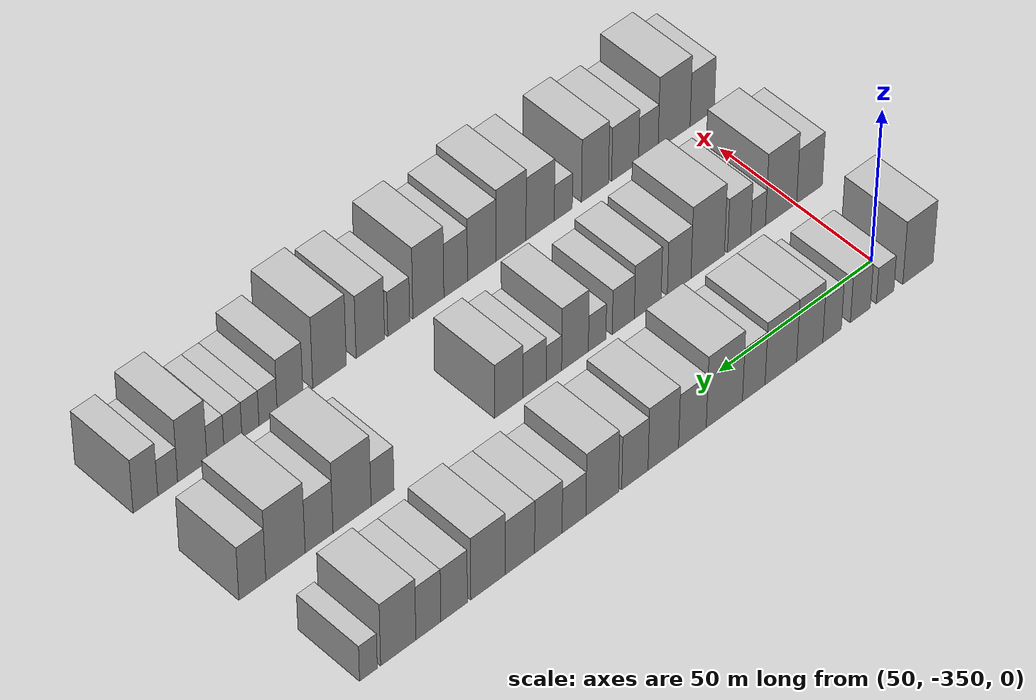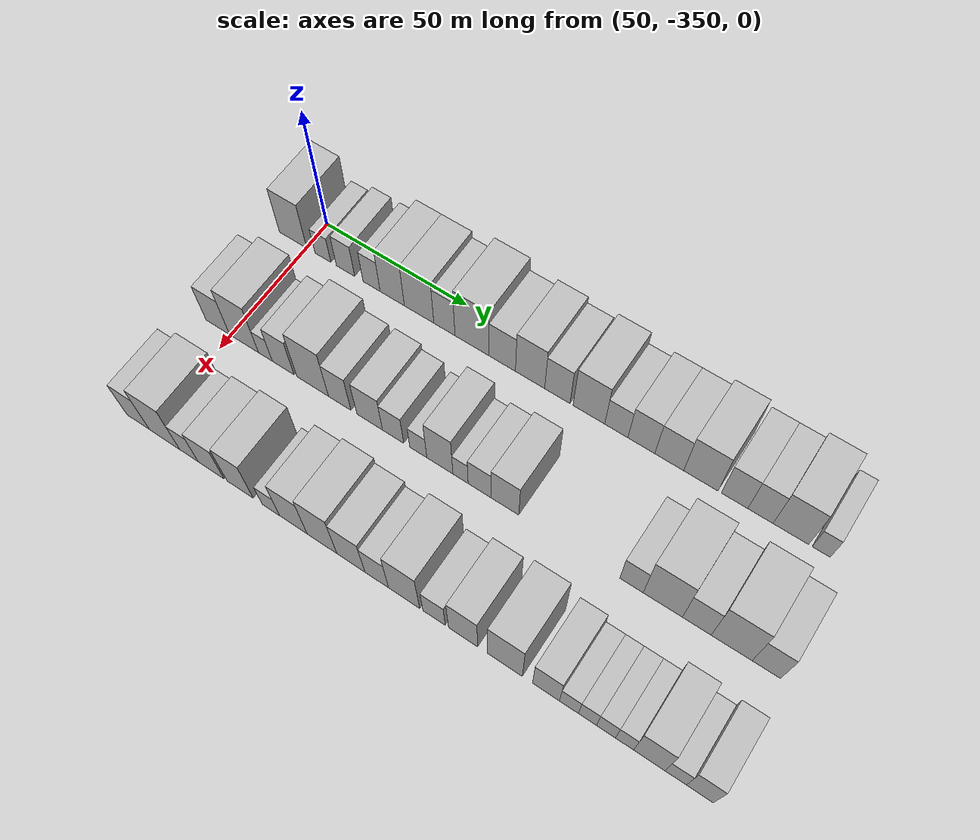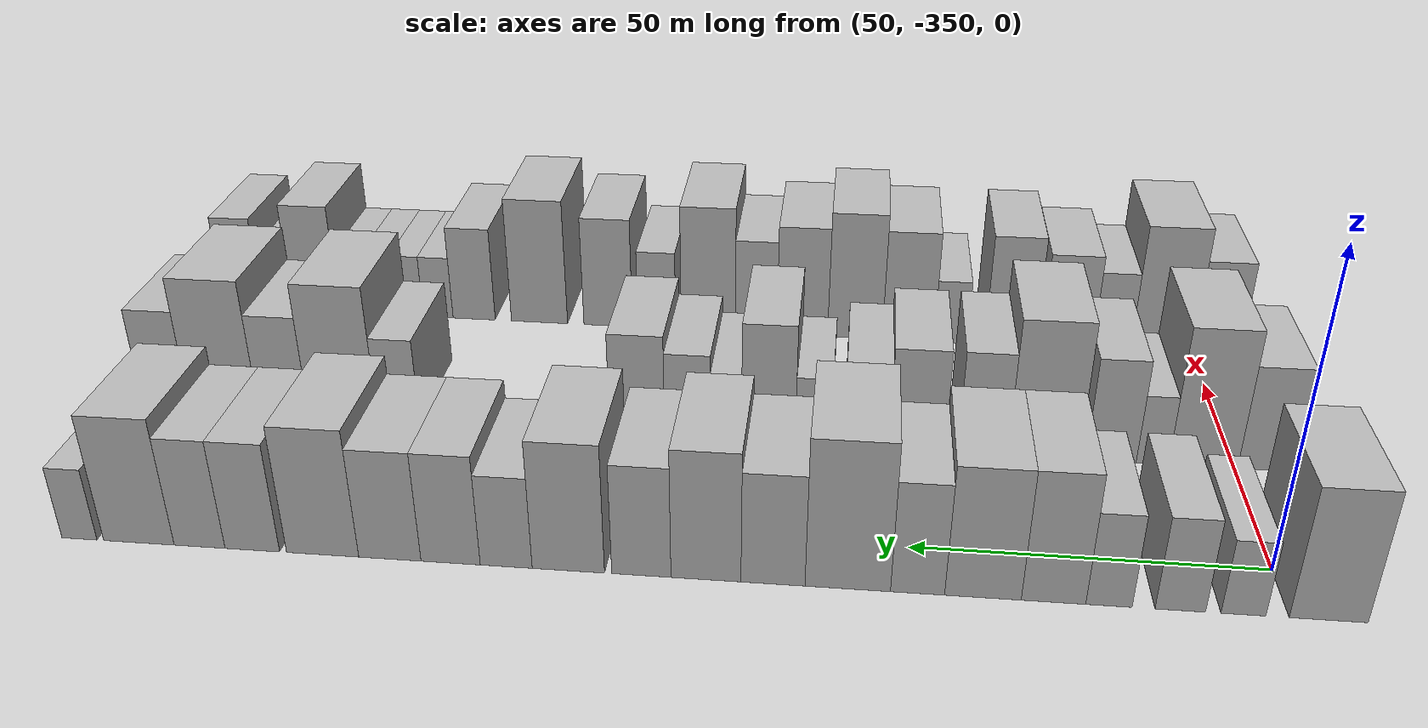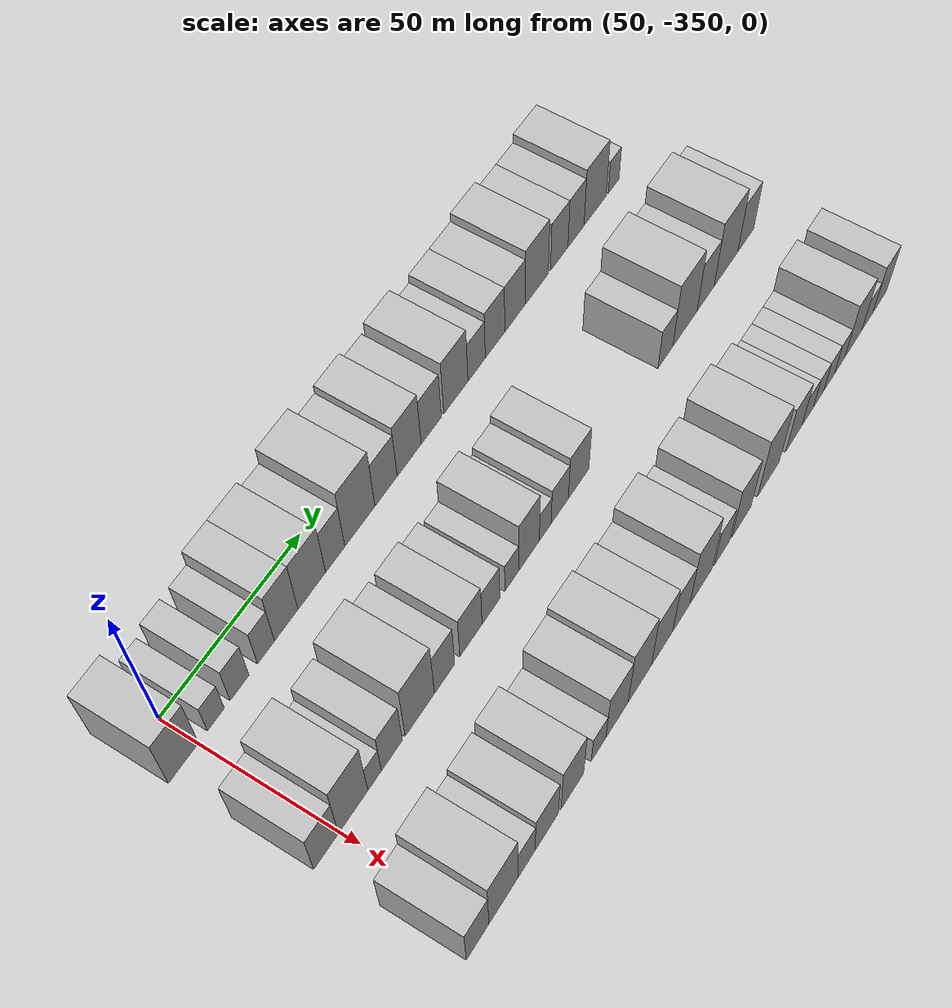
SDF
<sdf version="1.6">
 <world name="default">
  <model name="building_1">
   <static>1</static>
   <pose>50.0000 -354.9391 0 0.000000 0.000000 0.000000</pose>
   <link name="link">
    <pose>0 0 10.50 0 0 0</pose>
    <collision name="collision"><geometry><box><size>20.0000 10.1219 21.0000</size></box></geometry></collision>
    <visual name="visual">
     <cast_shadows>0</cast_shadows>
     <geometry><box><size>20.0000 10.1219 21.0000</size></box></geometry>
     <material>
      <script>
       <uri>model://HANNAS_wall/materials/scripts</uri>
       <uri>model://HANNAS_wall/materials/textures</uri>
       <name>vrc/HANNAS_wall</name>
      </script>
     </material>
    </visual>
   </link>
  </model>
  <model name="building_2">
   <static>1</static>
   <pose>50.0000 -343.9775 0 0.000000 0.000000 0.000000</pose>
   <link name="link">
    <pose>0 0 6.00 0 0 0</pose>
    <collision name="collision"><geometry><box><size>20.0000 5.8013 12.0000</size></box></geometry></collision>
    <visual name="visual">
     <cast_shadows>0</cast_shadows>
     <geometry><box><size>20.0000 5.8013 12.0000</size></box></geometry>
     <material>
      <script>
       <uri>model://HANNAS_wall/materials/scripts</uri>
       <uri>model://HANNAS_wall/materials/textures</uri>
       <name>vrc/HANNAS_wall</name>
      </script>
     </material>
    </visual>
   </link>
  </model>
  <model name="building_3">
   <static>1</static>
   <pose>50.0000 -335.7818 0 0.000000 0.000000 0.000000</pose>
   <link name="link">
    <pose>0 0 7.50 0 0 0</pose>
    <collision name="collision"><geometry><box><size>20.0000 6.5900 15.0000</size></box></geometry></collision>
    <visual name="visual">
     <cast_shadows>0</cast_shadows>
     <geometry><box><size>20.0000 6.5900 15.0000</size></box></geometry>
     <material>
      <script>
       <uri>model://HANNAS_wall/materials/scripts</uri>
       <uri>model://HANNAS_wall/materials/textures</uri>
       <name>vrc/HANNAS_wall</name>
      </script>
     </material>
    </visual>
   </link>
  </model>
  <model name="building_4">
   <static>1</static>
   <pose>50.0000 -326.4443 0 0.000000 0.000000 0.000000</pose>
   <link name="link">
    <pose>0 0 7.50 0 0 0</pose>
    <collision name="collision"><geometry><box><size>20.0000 6.0850 15.0000</size></box></geometry></collision>
    <visual name="visual">
     <cast_shadows>0</cast_shadows>
     <geometry><box><size>20.0000 6.0850 15.0000</size></box></geometry>
     <material>
      <script>
       <uri>model://HANNAS_wall/materials/scripts</uri>
       <uri>model://HANNAS_wall/materials/textures</uri>
       <name>vrc/HANNAS_wall</name>
      </script>
     </material>
    </visual>
   </link>
  </model>
  <model name="building_5">
   <static>1</static>
   <pose>50.0000 -319.1303 0 0.000000 0.000000 0.000000</pose>
   <link name="link">
    <pose>0 0 10.50 0 0 0</pose>
    <collision name="collision"><geometry><box><size>20.0000 8.5431 21.0000</size></box></geometry></collision>
    <visual name="visual">
     <cast_shadows>0</cast_shadows>
     <geometry><box><size>20.0000 8.5431 21.0000</size></box></geometry>
     <material>
      <script>
       <uri>model://HANNAS_wall/materials/scripts</uri>
       <uri>model://HANNAS_wall/materials/textures</uri>
       <name>vrc/HANNAS_wall</name>
      </script>
     </material>
    </visual>
   </link>
  </model>
  <model name="building_6">
   <static>1</static>
   <pose>50.0000 -309.7479 0 0.000000 0.000000 0.000000</pose>
   <link name="link">
    <pose>0 0 10.50 0 0 0</pose>
    <collision name="collision"><geometry><box><size>20.0000 10.2218 21.0000</size></box></geometry></collision>
    <visual name="visual">
     <cast_shadows>0</cast_shadows>
     <geometry><box><size>20.0000 10.2218 21.0000</size></box></geometry>
     <material>
      <script>
       <uri>model://HANNAS_wall/materials/scripts</uri>
       <uri>model://HANNAS_wall/materials/textures</uri>
       <name>vrc/HANNAS_wall</name>
      </script>
     </material>
    </visual>
   </link>
  </model>
  <model name="building_7">
   <static>1</static>
   <pose>50.0000 -301.0002 0 0.000000 0.000000 0.000000</pose>
   <link name="link">
    <pose>0 0 9.00 0 0 0</pose>
    <collision name="collision"><geometry><box><size>20.0000 7.2737 18.0000</size></box></geometry></collision>
    <visual name="visual">
     <cast_shadows>0</cast_shadows>
     <geometry><box><size>20.0000 7.2737 18.0000</size></box></geometry>
     <material>
      <script>
       <uri>model://HANNAS_wall/materials/scripts</uri>
       <uri>model://HANNAS_wall/materials/textures</uri>
       <name>vrc/HANNAS_wall</name>
      </script>
     </material>
    </visual>
   </link>
  </model>
  <model name="building_8">
   <static>1</static>
   <pose>50.0000 -291.5645 0 0.000000 0.000000 0.000000</pose>
   <link name="link">
    <pose>0 0 12.00 0 0 0</pose>
    <collision name="collision"><geometry><box><size>20.0000 11.5976 24.0000</size></box></geometry></collision>
    <visual name="visual">
     <cast_shadows>0</cast_shadows>
     <geometry><box><size>20.0000 11.5976 24.0000</size></box></geometry>
     <material>
      <script>
       <uri>model://HANNAS_wall/materials/scripts</uri>
       <uri>model://HANNAS_wall/materials/textures</uri>
       <name>vrc/HANNAS_wall</name>
      </script>
     </material>
    </visual>
   </link>
  </model>
  <model name="building_9">
   <static>1</static>
   <pose>50.0000 -281.3838 0 0.000000 0.000000 0.000000</pose>
   <link name="link">
    <pose>0 0 9.00 0 0 0</pose>
    <collision name="collision"><geometry><box><size>20.0000 8.7638 18.0000</size></box></geometry></collision>
    <visual name="visual">
     <cast_shadows>0</cast_shadows>
     <geometry><box><size>20.0000 8.7638 18.0000</size></box></geometry>
     <material>
      <script>
       <uri>model://HANNAS_wall/materials/scripts</uri>
       <uri>model://HANNAS_wall/materials/textures</uri>
       <name>vrc/HANNAS_wall</name>
      </script>
     </material>
    </visual>
   </link>
  </model>
  <model name="building_10">
   <static>1</static>
   <pose>50.0000 -272.1794 0 0.000000 0.000000 0.000000</pose>
   <link name="link">
    <pose>0 0 10.50 0 0 0</pose>
    <collision name="collision"><geometry><box><size>20.0000 9.6451 21.0000</size></box></geometry></collision>
    <visual name="visual">
     <cast_shadows>0</cast_shadows>
     <geometry><box><size>20.0000 9.6451 21.0000</size></box></geometry>
     <material>
      <script>
       <uri>model://HANNAS_wall/materials/scripts</uri>
       <uri>model://HANNAS_wall/materials/textures</uri>
       <name>vrc/HANNAS_wall</name>
      </script>
     </material>
    </visual>
   </link>
  </model>
  <model name="building_11">
   <static>1</static>
   <pose>50.0000 -263.2379 0 0.000000 0.000000 0.000000</pose>
   <link name="link">
    <pose>0 0 9.00 0 0 0</pose>
    <collision name="collision"><geometry><box><size>20.0000 8.2379 18.0000</size></box></geometry></collision>
    <visual name="visual">
     <cast_shadows>0</cast_shadows>
     <geometry><box><size>20.0000 8.2379 18.0000</size></box></geometry>
     <material>
      <script>
       <uri>model://HANNAS_wall/materials/scripts</uri>
       <uri>model://HANNAS_wall/materials/textures</uri>
       <name>vrc/HANNAS_wall</name>
      </script>
     </material>
    </visual>
   </link>
  </model>
  <model name="building_12">
   <static>1</static>
   <pose>50.0000 -253.0416 0 0.000000 0.000000 0.000000</pose>
   <link name="link">
    <pose>0 0 10.50 0 0 0</pose>
    <collision name="collision"><geometry><box><size>20.0000 10.1548 21.0000</size></box></geometry></collision>
    <visual name="visual">
     <cast_shadows>0</cast_shadows>
     <geometry><box><size>20.0000 10.1548 21.0000</size></box></geometry>
     <material>
      <script>
       <uri>model://HANNAS_wall/materials/scripts</uri>
       <uri>model://HANNAS_wall/materials/textures</uri>
       <name>vrc/HANNAS_wall</name>
      </script>
     </material>
    </visual>
   </link>
  </model>
  <model name="building_13">
   <static>1</static>
   <pose>50.0000 -244.2923 0 0.000000 0.000000 0.000000</pose>
   <link name="link">
    <pose>0 0 7.50 0 0 0</pose>
    <collision name="collision"><geometry><box><size>20.0000 7.3437 15.0000</size></box></geometry></collision>
    <visual name="visual">
     <cast_shadows>0</cast_shadows>
     <geometry><box><size>20.0000 7.3437 15.0000</size></box></geometry>
     <material>
      <script>
       <uri>model://HANNAS_wall/materials/scripts</uri>
       <uri>model://HANNAS_wall/materials/textures</uri>
       <name>vrc/HANNAS_wall</name>
      </script>
     </material>
    </visual>
   </link>
  </model>
  <model name="building_14">
   <static>1</static>
   <pose>50.0000 -236.4029 0 0.000000 0.000000 0.000000</pose>
   <link name="link">
    <pose>0 0 9.00 0 0 0</pose>
    <collision name="collision"><geometry><box><size>20.0000 8.4350 18.0000</size></box></geometry></collision>
    <visual name="visual">
     <cast_shadows>0</cast_shadows>
     <geometry><box><size>20.0000 8.4350 18.0000</size></box></geometry>
     <material>
      <script>
       <uri>model://HANNAS_wall/materials/scripts</uri>
       <uri>model://HANNAS_wall/materials/textures</uri>
       <name>vrc/HANNAS_wall</name>
      </script>
     </material>
    </visual>
   </link>
  </model>
  <model name="building_15">
   <static>1</static>
   <pose>50.0000 -227.7180 0 0.000000 0.000000 0.000000</pose>
   <link name="link">
    <pose>0 0 9.00 0 0 0</pose>
    <collision name="collision"><geometry><box><size>20.0000 8.9350 18.0000</size></box></geometry></collision>
    <visual name="visual">
     <cast_shadows>0</cast_shadows>
     <geometry><box><size>20.0000 8.9350 18.0000</size></box></geometry>
     <material>
      <script>
       <uri>model://HANNAS_wall/materials/scripts</uri>
       <uri>model://HANNAS_wall/materials/textures</uri>
       <name>vrc/HANNAS_wall</name>
      </script>
     </material>
    </visual>
   </link>
  </model>
  <model name="building_16">
   <static>1</static>
   <pose>50.0000 -218.0276 0 0.000000 0.000000 0.000000</pose>
   <link name="link">
    <pose>0 0 10.50 0 0 0</pose>
    <collision name="collision"><geometry><box><size>20.0000 10.4457 21.0000</size></box></geometry></collision>
    <visual name="visual">
     <cast_shadows>0</cast_shadows>
     <geometry><box><size>20.0000 10.4457 21.0000</size></box></geometry>
     <material>
      <script>
       <uri>model://HANNAS_wall/materials/scripts</uri>
       <uri>model://HANNAS_wall/materials/textures</uri>
       <name>vrc/HANNAS_wall</name>
      </script>
     </material>
    </visual>
   </link>
  </model>
  <model name="building_17">
   <static>1</static>
   <pose>50.0000 -207.8202 0 0.000000 0.000000 0.000000</pose>
   <link name="link">
    <pose>0 0 9.00 0 0 0</pose>
    <collision name="collision"><geometry><box><size>20.0000 7.9692 18.0000</size></box></geometry></collision>
    <visual name="visual">
     <cast_shadows>0</cast_shadows>
     <geometry><box><size>20.0000 7.9692 18.0000</size></box></geometry>
     <material>
      <script>
       <uri>model://HANNAS_wall/materials/scripts</uri>
       <uri>model://HANNAS_wall/materials/textures</uri>
       <name>vrc/HANNAS_wall</name>
      </script>
     </material>
    </visual>
   </link>
  </model>
  <model name="building_18">
   <static>1</static>
   <pose>50.0000 -200.0964 0 0.000000 0.000000 0.000000</pose>
   <link name="link">
    <pose>0 0 9.00 0 0 0</pose>
    <collision name="collision"><geometry><box><size>20.0000 7.4784 18.0000</size></box></geometry></collision>
    <visual name="visual">
     <cast_shadows>0</cast_shadows>
     <geometry><box><size>20.0000 7.4784 18.0000</size></box></geometry>
     <material>
      <script>
       <uri>model://HANNAS_wall/materials/scripts</uri>
       <uri>model://HANNAS_wall/materials/textures</uri>
       <name>vrc/HANNAS_wall</name>
      </script>
     </material>
    </visual>
   </link>
  </model>
  <model name="building_19">
   <static>1</static>
   <pose>50.0000 -191.1372 0 0.000000 0.000000 0.000000</pose>
   <link name="link">
    <pose>0 0 10.50 0 0 0</pose>
    <collision name="collision"><geometry><box><size>20.0000 10.4399 21.0000</size></box></geometry></collision>
    <visual name="visual">
     <cast_shadows>0</cast_shadows>
     <geometry><box><size>20.0000 10.4399 21.0000</size></box></geometry>
     <material>
      <script>
       <uri>model://HANNAS_wall/materials/scripts</uri>
       <uri>model://HANNAS_wall/materials/textures</uri>
       <name>vrc/HANNAS_wall</name>
      </script>
     </material>
    </visual>
   </link>
  </model>
  <model name="building_20">
   <static>1</static>
   <pose>50.0000 -182.3036 0 0.000000 0.000000 0.000000</pose>
   <link name="link">
    <pose>0 0 6.00 0 0 0</pose>
    <collision name="collision"><geometry><box><size>20.0000 5.2275 12.0000</size></box></geometry></collision>
    <visual name="visual">
     <cast_shadows>0</cast_shadows>
     <geometry><box><size>20.0000 5.2275 12.0000</size></box></geometry>
     <material>
      <script>
       <uri>model://HANNAS_wall/materials/scripts</uri>
       <uri>model://HANNAS_wall/materials/textures</uri>
       <name>vrc/HANNAS_wall</name>
      </script>
     </material>
    </visual>
   </link>
  </model>
  <model name="building_82">
   <static>1</static>
   <pose>85.0000 -354.7007 0 0.000000 0.000000 0.000000</pose>
   <link name="link">
    <pose>0 0 9.00 0 0 0</pose>
    <collision name="collision"><geometry><box><size>20.0000 8.5985 18.0000</size></box></geometry></collision>
    <visual name="visual">
     <cast_shadows>0</cast_shadows>
     <geometry><box><size>20.0000 8.5985 18.0000</size></box></geometry>
     <material>
      <script>
       <uri>model://HANNAS_wall/materials/scripts</uri>
       <uri>model://HANNAS_wall/materials/textures</uri>
       <name>vrc/HANNAS_wall</name>
      </script>
     </material>
    </visual>
   </link>
  </model>
  <model name="building_83">
   <static>1</static>
   <pose>85.0000 -345.2145 0 0.000000 0.000000 0.000000</pose>
   <link name="link">
    <pose>0 0 12.00 0 0 0</pose>
    <collision name="collision"><geometry><box><size>20.0000 10.3740 24.0000</size></box></geometry></collision>
    <visual name="visual">
     <cast_shadows>0</cast_shadows>
     <geometry><box><size>20.0000 10.3740 24.0000</size></box></geometry>
     <material>
      <script>
       <uri>model://HANNAS_wall/materials/scripts</uri>
       <uri>model://HANNAS_wall/materials/textures</uri>
       <name>vrc/HANNAS_wall</name>
      </script>
     </material>
    </visual>
   </link>
  </model>
  <model name="building_84">
   <static>1</static>
   <pose>85.0000 -337.5920 0 0.000000 0.000000 0.000000</pose>
   <link name="link">
    <pose>0 0 6.00 0 0 0</pose>
    <collision name="collision"><geometry><box><size>20.0000 4.8711 12.0000</size></box></geometry></collision>
    <visual name="visual">
     <cast_shadows>0</cast_shadows>
     <geometry><box><size>20.0000 4.8711 12.0000</size></box></geometry>
     <material>
      <script>
       <uri>model://HANNAS_wall/materials/scripts</uri>
       <uri>model://HANNAS_wall/materials/textures</uri>
       <name>vrc/HANNAS_wall</name>
      </script>
     </material>
    </visual>
   </link>
  </model>
  <model name="building_85">
   <static>1</static>
   <pose>85.0000 -331.3348 0 0.000000 0.000000 0.000000</pose>
   <link name="link">
    <pose>0 0 9.00 0 0 0</pose>
    <collision name="collision"><geometry><box><size>20.0000 7.6434 18.0000</size></box></geometry></collision>
    <visual name="visual">
     <cast_shadows>0</cast_shadows>
     <geometry><box><size>20.0000 7.6434 18.0000</size></box></geometry>
     <material>
      <script>
       <uri>model://HANNAS_wall/materials/scripts</uri>
       <uri>model://HANNAS_wall/materials/textures</uri>
       <name>vrc/HANNAS_wall</name>
      </script>
     </material>
    </visual>
   </link>
  </model>
  <model name="building_86">
   <static>1</static>
   <pose>85.0000 -321.0330 0 0.000000 0.000000 0.000000</pose>
   <link name="link">
    <pose>0 0 12.00 0 0 0</pose>
    <collision name="collision"><geometry><box><size>20.0000 10.9603 24.0000</size></box></geometry></collision>
    <visual name="visual">
     <cast_shadows>0</cast_shadows>
     <geometry><box><size>20.0000 10.9603 24.0000</size></box></geometry>
     <material>
      <script>
       <uri>model://HANNAS_wall/materials/scripts</uri>
       <uri>model://HANNAS_wall/materials/textures</uri>
       <name>vrc/HANNAS_wall</name>
      </script>
     </material>
    </visual>
   </link>
  </model>
  <model name="building_87">
   <static>1</static>
   <pose>85.0000 -311.7070 0 0.000000 0.000000 0.000000</pose>
   <link name="link">
    <pose>0 0 9.00 0 0 0</pose>
    <collision name="collision"><geometry><box><size>20.0000 7.6917 18.0000</size></box></geometry></collision>
    <visual name="visual">
     <cast_shadows>0</cast_shadows>
     <geometry><box><size>20.0000 7.6917 18.0000</size></box></geometry>
     <material>
      <script>
       <uri>model://HANNAS_wall/materials/scripts</uri>
       <uri>model://HANNAS_wall/materials/textures</uri>
       <name>vrc/HANNAS_wall</name>
      </script>
     </material>
    </visual>
   </link>
  </model>
  <model name="building_88">
   <static>1</static>
   <pose>85.0000 -301.5339 0 0.000000 0.000000 0.000000</pose>
   <link name="link">
    <pose>0 0 9.00 0 0 0</pose>
    <collision name="collision"><geometry><box><size>20.0000 8.6545 18.0000</size></box></geometry></collision>
    <visual name="visual">
     <cast_shadows>0</cast_shadows>
     <geometry><box><size>20.0000 8.6545 18.0000</size></box></geometry>
     <material>
      <script>
       <uri>model://HANNAS_wall/materials/scripts</uri>
       <uri>model://HANNAS_wall/materials/textures</uri>
       <name>vrc/HANNAS_wall</name>
      </script>
     </material>
    </visual>
   </link>
  </model>
  <model name="building_89">
   <static>1</static>
   <pose>85.0000 -293.6719 0 0.000000 0.000000 0.000000</pose>
   <link name="link">
    <pose>0 0 7.50 0 0 0</pose>
    <collision name="collision"><geometry><box><size>20.0000 7.0694 15.0000</size></box></geometry></collision>
    <visual name="visual">
     <cast_shadows>0</cast_shadows>
     <geometry><box><size>20.0000 7.0694 15.0000</size></box></geometry>
     <material>
      <script>
       <uri>model://HANNAS_wall/materials/scripts</uri>
       <uri>model://HANNAS_wall/materials/textures</uri>
       <name>vrc/HANNAS_wall</name>
      </script>
     </material>
    </visual>
   </link>
  </model>
  <model name="building_90">
   <static>1</static>
   <pose>85.0000 -285.3346 0 0.000000 0.000000 0.000000</pose>
   <link name="link">
    <pose>0 0 6.00 0 0 0</pose>
    <collision name="collision"><geometry><box><size>20.0000 5.6052 12.0000</size></box></geometry></collision>
    <visual name="visual">
     <cast_shadows>0</cast_shadows>
     <geometry><box><size>20.0000 5.6052 12.0000</size></box></geometry>
     <material>
      <script>
       <uri>model://HANNAS_wall/materials/scripts</uri>
       <uri>model://HANNAS_wall/materials/textures</uri>
       <name>vrc/HANNAS_wall</name>
      </script>
     </material>
    </visual>
   </link>
  </model>
  <model name="building_91">
   <static>1</static>
   <pose>85.0000 -278.2893 0 0.000000 0.000000 0.000000</pose>
   <link name="link">
    <pose>0 0 10.50 0 0 0</pose>
    <collision name="collision"><geometry><box><size>20.0000 8.4854 21.0000</size></box></geometry></collision>
    <visual name="visual">
     <cast_shadows>0</cast_shadows>
     <geometry><box><size>20.0000 8.4854 21.0000</size></box></geometry>
     <material>
      <script>
       <uri>model://HANNAS_wall/materials/scripts</uri>
       <uri>model://HANNAS_wall/materials/textures</uri>
       <name>vrc/HANNAS_wall</name>
      </script>
     </material>
    </visual>
   </link>
  </model>
  <model name="building_92">
   <static>1</static>
   <pose>85.0000 -271.5941 0 0.000000 0.000000 0.000000</pose>
   <link name="link">
    <pose>0 0 6.00 0 0 0</pose>
    <collision name="collision"><geometry><box><size>20.0000 4.9048 12.0000</size></box></geometry></collision>
    <visual name="visual">
     <cast_shadows>0</cast_shadows>
     <geometry><box><size>20.0000 4.9048 12.0000</size></box></geometry>
     <material>
      <script>
       <uri>model://HANNAS_wall/materials/scripts</uri>
       <uri>model://HANNAS_wall/materials/textures</uri>
       <name>vrc/HANNAS_wall</name>
      </script>
     </material>
    </visual>
   </link>
  </model>
  <model name="building_93">
   <static>1</static>
   <pose>85.0000 -265.5024 0 0.000000 0.000000 0.000000</pose>
   <link name="link">
    <pose>0 0 7.50 0 0 0</pose>
    <collision name="collision"><geometry><box><size>20.0000 7.2786 15.0000</size></box></geometry></collision>
    <visual name="visual">
     <cast_shadows>0</cast_shadows>
     <geometry><box><size>20.0000 7.2786 15.0000</size></box></geometry>
     <material>
      <script>
       <uri>model://HANNAS_wall/materials/scripts</uri>
       <uri>model://HANNAS_wall/materials/textures</uri>
       <name>vrc/HANNAS_wall</name>
      </script>
     </material>
    </visual>
   </link>
  </model>
  <model name="building_94">
   <static>1</static>
   <pose>85.0000 -257.4633 0 0.000000 0.000000 0.000000</pose>
   <link name="link">
    <pose>0 0 9.00 0 0 0</pose>
    <collision name="collision"><geometry><box><size>20.0000 8.7997 18.0000</size></box></geometry></collision>
    <visual name="visual">
     <cast_shadows>0</cast_shadows>
     <geometry><box><size>20.0000 8.7997 18.0000</size></box></geometry>
     <material>
      <script>
       <uri>model://HANNAS_wall/materials/scripts</uri>
       <uri>model://HANNAS_wall/materials/textures</uri>
       <name>vrc/HANNAS_wall</name>
      </script>
     </material>
    </visual>
   </link>
  </model>
  <model name="building_95">
   <static>1</static>
   <pose>85.0000 -218.6229 0 0.000000 0.000000 0.000000</pose>
   <link name="link">
    <pose>0 0 7.50 0 0 0</pose>
    <collision name="collision"><geometry><box><size>20.0000 6.9604 15.0000</size></box></geometry></collision>
    <visual name="visual">
     <cast_shadows>0</cast_shadows>
     <geometry><box><size>20.0000 6.9604 15.0000</size></box></geometry>
     <material>
      <script>
       <uri>model://HANNAS_wall/materials/scripts</uri>
       <uri>model://HANNAS_wall/materials/textures</uri>
       <name>vrc/HANNAS_wall</name>
      </script>
     </material>
    </visual>
   </link>
  </model>
  <model name="building_96">
   <static>1</static>
   <pose>85.0000 -209.4043 0 0.000000 0.000000 0.000000</pose>
   <link name="link">
    <pose>0 0 12.00 0 0 0</pose>
    <collision name="collision"><geometry><box><size>20.0000 11.4768 24.0000</size></box></geometry></collision>
    <visual name="visual">
     <cast_shadows>0</cast_shadows>
     <geometry><box><size>20.0000 11.4768 24.0000</size></box></geometry>
     <material>
      <script>
       <uri>model://HANNAS_wall/materials/scripts</uri>
       <uri>model://HANNAS_wall/materials/textures</uri>
       <name>vrc/HANNAS_wall</name>
      </script>
     </material>
    </visual>
   </link>
  </model>
  <model name="building_97">
   <static>1</static>
   <pose>85.0000 -199.5050 0 0.000000 0.000000 0.000000</pose>
   <link name="link">
    <pose>0 0 9.00 0 0 0</pose>
    <collision name="collision"><geometry><box><size>20.0000 8.3219 18.0000</size></box></geometry></collision>
    <visual name="visual">
     <cast_shadows>0</cast_shadows>
     <geometry><box><size>20.0000 8.3219 18.0000</size></box></geometry>
     <material>
      <script>
       <uri>model://HANNAS_wall/materials/scripts</uri>
       <uri>model://HANNAS_wall/materials/textures</uri>
       <name>vrc/HANNAS_wall</name>
      </script>
     </material>
    </visual>
   </link>
  </model>
  <model name="building_98">
   <static>1</static>
   <pose>85.0000 -189.5087 0 0.000000 0.000000 0.000000</pose>
   <link name="link">
    <pose>0 0 12.00 0 0 0</pose>
    <collision name="collision"><geometry><box><size>20.0000 11.6706 24.0000</size></box></geometry></collision>
    <visual name="visual">
     <cast_shadows>0</cast_shadows>
     <geometry><box><size>20.0000 11.6706 24.0000</size></box></geometry>
     <material>
      <script>
       <uri>model://HANNAS_wall/materials/scripts</uri>
       <uri>model://HANNAS_wall/materials/textures</uri>
       <name>vrc/HANNAS_wall</name>
      </script>
     </material>
    </visual>
   </link>
  </model>
  <model name="building_99">
   <static>1</static>
   <pose>85.0000 -179.6926 0 0.000000 0.000000 0.000000</pose>
   <link name="link">
    <pose>0 0 9.00 0 0 0</pose>
    <collision name="collision"><geometry><box><size>20.0000 7.9617 18.0000</size></box></geometry></collision>
    <visual name="visual">
     <cast_shadows>0</cast_shadows>
     <geometry><box><size>20.0000 7.9617 18.0000</size></box></geometry>
     <material>
      <script>
       <uri>model://HANNAS_wall/materials/scripts</uri>
       <uri>model://HANNAS_wall/materials/textures</uri>
       <name>vrc/HANNAS_wall</name>
      </script>
     </material>
    </visual>
   </link>
  </model>
  <model name="building_162">
   <static>1</static>
   <pose>120.0000 -353.9461 0 0.000000 0.000000 0.000000</pose>
   <link name="link">
    <pose>0 0 9.00 0 0 0</pose>
    <collision name="collision"><geometry><box><size>20.0000 8.1078 18.0000</size></box></geometry></collision>
    <visual name="visual">
     <cast_shadows>0</cast_shadows>
     <geometry><box><size>20.0000 8.1078 18.0000</size></box></geometry>
     <material>
      <script>
       <uri>model://HANNAS_wall/materials/scripts</uri>
       <uri>model://HANNAS_wall/materials/textures</uri>
       <name>vrc/HANNAS_wall</name>
      </script>
     </material>
    </visual>
   </link>
  </model>
  <model name="building_163">
   <static>1</static>
   <pose>120.0000 -344.5730 0 0.000000 0.000000 0.000000</pose>
   <link name="link">
    <pose>0 0 12.00 0 0 0</pose>
    <collision name="collision"><geometry><box><size>20.0000 10.6384 24.0000</size></box></geometry></collision>
    <visual name="visual">
     <cast_shadows>0</cast_shadows>
     <geometry><box><size>20.0000 10.6384 24.0000</size></box></geometry>
     <material>
      <script>
       <uri>model://HANNAS_wall/materials/scripts</uri>
       <uri>model://HANNAS_wall/materials/textures</uri>
       <name>vrc/HANNAS_wall</name>
      </script>
     </material>
    </visual>
   </link>
  </model>
  <model name="building_164">
   <static>1</static>
   <pose>120.0000 -336.0328 0 0.000000 0.000000 0.000000</pose>
   <link name="link">
    <pose>0 0 7.50 0 0 0</pose>
    <collision name="collision"><geometry><box><size>20.0000 6.4419 15.0000</size></box></geometry></collision>
    <visual name="visual">
     <cast_shadows>0</cast_shadows>
     <geometry><box><size>20.0000 6.4419 15.0000</size></box></geometry>
     <material>
      <script>
       <uri>model://HANNAS_wall/materials/scripts</uri>
       <uri>model://HANNAS_wall/materials/textures</uri>
       <name>vrc/HANNAS_wall</name>
      </script>
     </material>
    </visual>
   </link>
  </model>
  <model name="building_165">
   <static>1</static>
   <pose>120.0000 -328.3669 0 0.000000 0.000000 0.000000</pose>
   <link name="link">
    <pose>0 0 9.00 0 0 0</pose>
    <collision name="collision"><geometry><box><size>20.0000 8.8899 18.0000</size></box></geometry></collision>
    <visual name="visual">
     <cast_shadows>0</cast_shadows>
     <geometry><box><size>20.0000 8.8899 18.0000</size></box></geometry>
     <material>
      <script>
       <uri>model://HANNAS_wall/materials/scripts</uri>
       <uri>model://HANNAS_wall/materials/textures</uri>
       <name>vrc/HANNAS_wall</name>
      </script>
     </material>
    </visual>
   </link>
  </model>
  <model name="building_166">
   <static>1</static>
   <pose>120.0000 -318.4994 0 0.000000 0.000000 0.000000</pose>
   <link name="link">
    <pose>0 0 10.50 0 0 0</pose>
    <collision name="collision"><geometry><box><size>20.0000 8.8451 21.0000</size></box></geometry></collision>
    <visual name="visual">
     <cast_shadows>0</cast_shadows>
     <geometry><box><size>20.0000 8.8451 21.0000</size></box></geometry>
     <material>
      <script>
       <uri>model://HANNAS_wall/materials/scripts</uri>
       <uri>model://HANNAS_wall/materials/textures</uri>
       <name>vrc/HANNAS_wall</name>
      </script>
     </material>
    </visual>
   </link>
  </model>
  <model name="building_167">
   <static>1</static>
   <pose>120.0000 -308.1642 0 0.000000 0.000000 0.000000</pose>
   <link name="link">
    <pose>0 0 6.00 0 0 0</pose>
    <collision name="collision"><geometry><box><size>20.0000 5.8252 12.0000</size></box></geometry></collision>
    <visual name="visual">
     <cast_shadows>0</cast_shadows>
     <geometry><box><size>20.0000 5.8252 12.0000</size></box></geometry>
     <material>
      <script>
       <uri>model://HANNAS_wall/materials/scripts</uri>
       <uri>model://HANNAS_wall/materials/textures</uri>
       <name>vrc/HANNAS_wall</name>
      </script>
     </material>
    </visual>
   </link>
  </model>
  <model name="building_168">
   <static>1</static>
   <pose>120.0000 -300.6950 0 0.000000 0.000000 0.000000</pose>
   <link name="link">
    <pose>0 0 10.50 0 0 0</pose>
    <collision name="collision"><geometry><box><size>20.0000 9.1132 21.0000</size></box></geometry></collision>
    <visual name="visual">
     <cast_shadows>0</cast_shadows>
     <geometry><box><size>20.0000 9.1132 21.0000</size></box></geometry>
     <material>
      <script>
       <uri>model://HANNAS_wall/materials/scripts</uri>
       <uri>model://HANNAS_wall/materials/textures</uri>
       <name>vrc/HANNAS_wall</name>
      </script>
     </material>
    </visual>
   </link>
  </model>
  <model name="building_169">
   <static>1</static>
   <pose>120.0000 -291.2985 0 0.000000 0.000000 0.000000</pose>
   <link name="link">
    <pose>0 0 12.00 0 0 0</pose>
    <collision name="collision"><geometry><box><size>20.0000 9.6798 24.0000</size></box></geometry></collision>
    <visual name="visual">
     <cast_shadows>0</cast_shadows>
     <geometry><box><size>20.0000 9.6798 24.0000</size></box></geometry>
     <material>
      <script>
       <uri>model://HANNAS_wall/materials/scripts</uri>
       <uri>model://HANNAS_wall/materials/textures</uri>
       <name>vrc/HANNAS_wall</name>
      </script>
     </material>
    </visual>
   </link>
  </model>
  <model name="building_170">
   <static>1</static>
   <pose>120.0000 -281.9465 0 0.000000 0.000000 0.000000</pose>
   <link name="link">
    <pose>0 0 10.50 0 0 0</pose>
    <collision name="collision"><geometry><box><size>20.0000 9.0242 21.0000</size></box></geometry></collision>
    <visual name="visual">
     <cast_shadows>0</cast_shadows>
     <geometry><box><size>20.0000 9.0242 21.0000</size></box></geometry>
     <material>
      <script>
       <uri>model://HANNAS_wall/materials/scripts</uri>
       <uri>model://HANNAS_wall/materials/textures</uri>
       <name>vrc/HANNAS_wall</name>
      </script>
     </material>
    </visual>
   </link>
  </model>
  <model name="building_171">
   <static>1</static>
   <pose>120.0000 -273.7005 0 0.000000 0.000000 0.000000</pose>
   <link name="link">
    <pose>0 0 9.00 0 0 0</pose>
    <collision name="collision"><geometry><box><size>20.0000 7.4677 18.0000</size></box></geometry></collision>
    <visual name="visual">
     <cast_shadows>0</cast_shadows>
     <geometry><box><size>20.0000 7.4677 18.0000</size></box></geometry>
     <material>
      <script>
       <uri>model://HANNAS_wall/materials/scripts</uri>
       <uri>model://HANNAS_wall/materials/textures</uri>
       <name>vrc/HANNAS_wall</name>
      </script>
     </material>
    </visual>
   </link>
  </model>
  <model name="building_172">
   <static>1</static>
   <pose>120.0000 -265.0955 0 0.000000 0.000000 0.000000</pose>
   <link name="link">
    <pose>0 0 12.00 0 0 0</pose>
    <collision name="collision"><geometry><box><size>20.0000 9.7425 24.0000</size></box></geometry></collision>
    <visual name="visual">
     <cast_shadows>0</cast_shadows>
     <geometry><box><size>20.0000 9.7425 24.0000</size></box></geometry>
     <material>
      <script>
       <uri>model://HANNAS_wall/materials/scripts</uri>
       <uri>model://HANNAS_wall/materials/textures</uri>
       <name>vrc/HANNAS_wall</name>
      </script>
     </material>
    </visual>
   </link>
  </model>
  <model name="building_173">
   <static>1</static>
   <pose>120.0000 -255.7993 0 0.000000 0.000000 0.000000</pose>
   <link name="link">
    <pose>0 0 7.50 0 0 0</pose>
    <collision name="collision"><geometry><box><size>20.0000 6.8498 15.0000</size></box></geometry></collision>
    <visual name="visual">
     <cast_shadows>0</cast_shadows>
     <geometry><box><size>20.0000 6.8498 15.0000</size></box></geometry>
     <material>
      <script>
       <uri>model://HANNAS_wall/materials/scripts</uri>
       <uri>model://HANNAS_wall/materials/textures</uri>
       <name>vrc/HANNAS_wall</name>
      </script>
     </material>
    </visual>
   </link>
  </model>
  <model name="building_174">
   <static>1</static>
   <pose>120.0000 -246.9511 0 0.000000 0.000000 0.000000</pose>
   <link name="link">
    <pose>0 0 10.50 0 0 0</pose>
    <collision name="collision"><geometry><box><size>20.0000 8.8464 21.0000</size></box></geometry></collision>
    <visual name="visual">
     <cast_shadows>0</cast_shadows>
     <geometry><box><size>20.0000 8.8464 21.0000</size></box></geometry>
     <material>
      <script>
       <uri>model://HANNAS_wall/materials/scripts</uri>
       <uri>model://HANNAS_wall/materials/textures</uri>
       <name>vrc/HANNAS_wall</name>
      </script>
     </material>
    </visual>
   </link>
  </model>
  <model name="building_175">
   <static>1</static>
   <pose>120.0000 -234.3610 0 0.000000 0.000000 0.000000</pose>
   <link name="link">
    <pose>0 0 12.00 0 0 0</pose>
    <collision name="collision"><geometry><box><size>20.0000 10.3339 24.0000</size></box></geometry></collision>
    <visual name="visual">
     <cast_shadows>0</cast_shadows>
     <geometry><box><size>20.0000 10.3339 24.0000</size></box></geometry>
     <material>
      <script>
       <uri>model://HANNAS_wall/materials/scripts</uri>
       <uri>model://HANNAS_wall/materials/textures</uri>
       <name>vrc/HANNAS_wall</name>
      </script>
     </material>
    </visual>
   </link>
  </model>
  <model name="building_176">
   <static>1</static>
   <pose>120.0000 -222.2785 0 0.000000 0.000000 0.000000</pose>
   <link name="link">
    <pose>0 0 9.00 0 0 0</pose>
    <collision name="collision"><geometry><box><size>20.0000 7.8311 18.0000</size></box></geometry></collision>
    <visual name="visual">
     <cast_shadows>0</cast_shadows>
     <geometry><box><size>20.0000 7.8311 18.0000</size></box></geometry>
     <material>
      <script>
       <uri>model://HANNAS_wall/materials/scripts</uri>
       <uri>model://HANNAS_wall/materials/textures</uri>
       <name>vrc/HANNAS_wall</name>
      </script>
     </material>
    </visual>
   </link>
  </model>
  <model name="building_177">
   <static>1</static>
   <pose>120.0000 -215.6015 0 0.000000 0.000000 0.000000</pose>
   <link name="link">
    <pose>0 0 6.00 0 0 0</pose>
    <collision name="collision"><geometry><box><size>20.0000 5.5230 12.0000</size></box></geometry></collision>
    <visual name="visual">
     <cast_shadows>0</cast_shadows>
     <geometry><box><size>20.0000 5.5230 12.0000</size></box></geometry>
     <material>
      <script>
       <uri>model://HANNAS_wall/materials/scripts</uri>
       <uri>model://HANNAS_wall/materials/textures</uri>
       <name>vrc/HANNAS_wall</name>
      </script>
     </material>
    </visual>
   </link>
  </model>
  <model name="building_178">
   <static>1</static>
   <pose>120.0000 -210.2576 0 0.000000 0.000000 0.000000</pose>
   <link name="link">
    <pose>0 0 6.00 0 0 0</pose>
    <collision name="collision"><geometry><box><size>20.0000 5.1648 12.0000</size></box></geometry></collision>
    <visual name="visual">
     <cast_shadows>0</cast_shadows>
     <geometry><box><size>20.0000 5.1648 12.0000</size></box></geometry>
     <material>
      <script>
       <uri>model://HANNAS_wall/materials/scripts</uri>
       <uri>model://HANNAS_wall/materials/textures</uri>
       <name>vrc/HANNAS_wall</name>
      </script>
     </material>
    </visual>
   </link>
  </model>
  <model name="building_179">
   <static>1</static>
   <pose>120.0000 -204.9850 0 0.000000 0.000000 0.000000</pose>
   <link name="link">
    <pose>0 0 6.00 0 0 0</pose>
    <collision name="collision"><geometry><box><size>20.0000 5.3804 12.0000</size></box></geometry></collision>
    <visual name="visual">
     <cast_shadows>0</cast_shadows>
     <geometry><box><size>20.0000 5.3804 12.0000</size></box></geometry>
     <material>
      <script>
       <uri>model://HANNAS_wall/materials/scripts</uri>
       <uri>model://HANNAS_wall/materials/textures</uri>
       <name>vrc/HANNAS_wall</name>
      </script>
     </material>
    </visual>
   </link>
  </model>
  <model name="building_180">
   <static>1</static>
   <pose>120.0000 -199.7356 0 0.000000 0.000000 0.000000</pose>
   <link name="link">
    <pose>0 0 6.00 0 0 0</pose>
    <collision name="collision"><geometry><box><size>20.0000 5.1184 12.0000</size></box></geometry></collision>
    <visual name="visual">
     <cast_shadows>0</cast_shadows>
     <geometry><box><size>20.0000 5.1184 12.0000</size></box></geometry>
     <material>
      <script>
       <uri>model://HANNAS_wall/materials/scripts</uri>
       <uri>model://HANNAS_wall/materials/textures</uri>
       <name>vrc/HANNAS_wall</name>
      </script>
     </material>
    </visual>
   </link>
  </model>
  <model name="building_181">
   <static>1</static>
   <pose>120.0000 -192.7862 0 0.000000 0.000000 0.000000</pose>
   <link name="link">
    <pose>0 0 10.50 0 0 0</pose>
    <collision name="collision"><geometry><box><size>20.0000 8.7804 21.0000</size></box></geometry></collision>
    <visual name="visual">
     <cast_shadows>0</cast_shadows>
     <geometry><box><size>20.0000 8.7804 21.0000</size></box></geometry>
     <material>
      <script>
       <uri>model://HANNAS_wall/materials/scripts</uri>
       <uri>model://HANNAS_wall/materials/textures</uri>
       <name>vrc/HANNAS_wall</name>
      </script>
     </material>
    </visual>
   </link>
  </model>
  <model name="building_182">
   <static>1</static>
   <pose>120.0000 -185.4616 0 0.000000 0.000000 0.000000</pose>
   <link name="link">
    <pose>0 0 6.00 0 0 0</pose>
    <collision name="collision"><geometry><box><size>20.0000 5.8688 12.0000</size></box></geometry></collision>
    <visual name="visual">
     <cast_shadows>0</cast_shadows>
     <geometry><box><size>20.0000 5.8688 12.0000</size></box></geometry>
     <material>
      <script>
       <uri>model://HANNAS_wall/materials/scripts</uri>
       <uri>model://HANNAS_wall/materials/textures</uri>
       <name>vrc/HANNAS_wall</name>
      </script>
     </material>
    </visual>
   </link>
  </model>
  <model name="building_183">
   <static>1</static>
   <pose>120.0000 -178.8788 0 0.000000 0.000000 0.000000</pose>
   <link name="link">
    <pose>0 0 9.00 0 0 0</pose>
    <collision name="collision"><geometry><box><size>20.0000 7.2969 18.0000</size></box></geometry></collision>
    <visual name="visual">
     <cast_shadows>0</cast_shadows>
     <geometry><box><size>20.0000 7.2969 18.0000</size></box></geometry>
     <material>
      <script>
       <uri>model://HANNAS_wall/materials/scripts</uri>
       <uri>model://HANNAS_wall/materials/textures</uri>
       <name>vrc/HANNAS_wall</name>
      </script>
     </material>
    </visual>
   </link>
  </model>
 </world>
</sdf>
